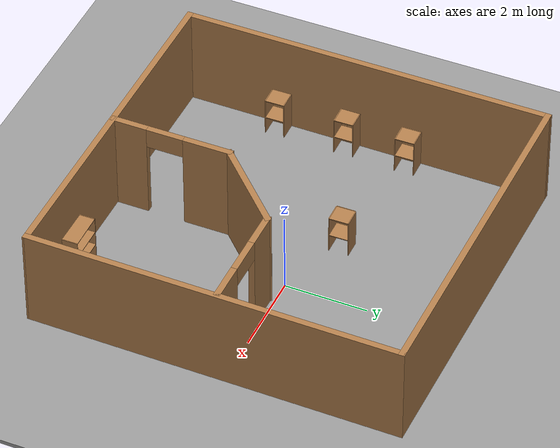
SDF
<sdf version="1.6">
 <world name="default">
  <plugin name="hello" filename="libhello.so"/>
  <light name="sun" type="directional">
   <pose>0 0 10 0 -0 0</pose>
   <diffuse>0.8 0.8 0.8 1</diffuse>
   <specular>0.2 0.2 0.2 1</specular>
   <attenuation>
    <range>1000</range>
    <constant>0.9</constant>
    <linear>0.01</linear>
    <quadratic>0.001</quadratic>
   </attenuation>
   <direction>-0.5 0.1 -0.9</direction>
  </light>
  <model name="ground_plane">
   <static>1</static>
   <link name="link">
    <collision name="collision">
     <geometry><plane><normal>0 0 1</normal><size>100 100</size></plane></geometry>
     <surface>
      <contact><collide_bitmask>65535</collide_bitmask></contact>
      <friction><ode><mu>100</mu><mu2>50</mu2></ode></friction>
     </surface>
    </collision>
    <visual name="visual">
     <cast_shadows>0</cast_shadows>
     <geometry><plane><normal>0 0 1</normal><size>100 100</size></plane></geometry>
     <material>
      <script><uri>file://media/materials/scripts/gazebo.material</uri><name>Gazebo/Grey</name></script>
     </material>
    </visual>
   </link>
  </model>
  <gravity>0 0 -9.8</gravity>
  <magnetic_field>6e-06 2.3e-05 -4.2e-05</magnetic_field>
  <atmosphere type="adiabatic"/>
  <physics name="default_physics" default="0" type="ode">
   <max_step_size>0.001</max_step_size>
   <real_time_factor>1</real_time_factor>
   <real_time_update_rate>1000</real_time_update_rate>
  </physics>
  <scene><ambient>0.4 0.4 0.4 1</ambient><background>0.7 0.7 0.7 1</background><shadows>1</shadows></scene>
  <audio><device>default</device></audio>
  <spherical_coordinates>
   <surface_model>EARTH_WGS84</surface_model>
   <latitude_deg>0</latitude_deg>
   <longitude_deg>0</longitude_deg>
   <elevation>0</elevation>
   <heading_deg>0</heading_deg>
  </spherical_coordinates>
  <plugin name="collision_map_creator" filename="libcollision_map_creator.so"/>
  <model name="bookshelf_clone">
   <static>1</static>
   <link name="link">
    <inertial><mass>1</mass></inertial>
    <collision name="back">
     <pose>0 0.005 0.6 0 -0 0</pose>
     <geometry><box><size>0.9 0.01 1.2</size></box></geometry>
    </collision>
    <visual name="visual1">
     <pose>0 0.005 0.6 0 -0 0</pose>
     <geometry><box><size>0.9 0.01 1.2</size></box></geometry>
     <material>
      <script><uri>file://media/materials/scripts/gazebo.material</uri><name>Gazebo/Wood</name></script>
     </material>
    </visual>
    <collision name="left_side">
     <pose>0.45 -0.195 0.6 0 -0 0</pose>
     <geometry><box><size>0.02 0.4 1.2</size></box></geometry>
    </collision>
    <visual name="visual2">
     <pose>0.45 -0.195 0.6 0 -0 0</pose>
     <geometry><box><size>0.02 0.4 1.2</size></box></geometry>
     <material>
      <script><uri>file://media/materials/scripts/gazebo.material</uri><name>Gazebo/Wood</name></script>
     </material>
    </visual>
    <collision name="right_side">
     <pose>-0.45 -0.195 0.6 0 -0 0</pose>
     <geometry><box><size>0.02 0.4 1.2</size></box></geometry>
    </collision>
    <visual name="visual3">
     <pose>-0.45 -0.195 0.6 0 -0 0</pose>
     <geometry><box><size>0.02 0.4 1.2</size></box></geometry>
     <material>
      <script><uri>file://media/materials/scripts/gazebo.material</uri><name>Gazebo/Wood</name></script>
     </material>
    </visual>
    <collision name="bottom">
     <pose>0 -0.195 0.03 0 -0 0</pose>
     <geometry><box><size>0.88 0.4 0.06</size></box></geometry>
    </collision>
    <visual name="visual4">
     <pose>0 -0.195 0.03 0 -0 0</pose>
     <geometry><box><size>0.88 0.4 0.06</size></box></geometry>
     <material>
      <script><uri>file://media/materials/scripts/gazebo.material</uri><name>Gazebo/Wood</name></script>
     </material>
    </visual>
    <collision name="top">
     <pose>0 -0.195 1.19 0 -0 0</pose>
     <geometry><box><size>0.88 0.4 0.02</size></box></geometry>
    </collision>
    <visual name="visual5">
     <pose>0 -0.195 1.19 0 -0 0</pose>
     <geometry><box><size>0.88 0.4 0.02</size></box></geometry>
     <material>
      <script><uri>file://media/materials/scripts/gazebo.material</uri><name>Gazebo/Wood</name></script>
     </material>
    </visual>
    <collision name="low_shelf">
     <pose>0 -0.195 0.43 0 -0 0</pose>
     <geometry><box><size>0.88 0.4 0.02</size></box></geometry>
    </collision>
    <visual name="visual6">
     <pose>0 -0.195 0.43 0 -0 0</pose>
     <geometry><box><size>0.88 0.4 0.02</size></box></geometry>
     <material>
      <script><uri>file://media/materials/scripts/gazebo.material</uri><name>Gazebo/Wood</name></script>
     </material>
    </visual>
    <collision name="high_shelf">
     <pose>0 -0.195 0.8 0 -0 0</pose>
     <geometry><box><size>0.88 0.4 0.02</size></box></geometry>
    </collision>
    <visual name="visual7">
     <pose>0 -0.195 0.8 0 -0 0</pose>
     <geometry><box><size>0.88 0.4 0.02</size></box></geometry>
     <material>
      <script><uri>file://media/materials/scripts/gazebo.material</uri><name>Gazebo/Wood</name></script>
     </material>
    </visual>
   </link>
   <pose>3.15092 -2.64147 0 0 0 -1.60802</pose>
  </model>
  <model name="ball_bearing">
   <link name="link">
    <pose>0 0 0.003 0 -0 0</pose>
    <inertial>
     <mass>0.0011</mass>
     <inertia>
      <ixx>3.96e-09</ixx>
      <ixy>0</ixy>
      <ixz>0</ixz>
      <iyy>3.96e-09</iyy>
      <iyz>0</iyz>
      <izz>3.96e-09</izz>
     </inertia>
    </inertial>
    <collision name="collision">
     <geometry><sphere><radius>0.003</radius></sphere></geometry>
     <surface>
      <contact>
       <poissons_ratio>0.305</poissons_ratio>
       <elastic_modulus>2e+11</elastic_modulus>
       <ode><kp>100000</kp><kd>100</kd><max_vel>100</max_vel><min_depth>0.001</min_depth></ode>
      </contact>
      <friction>
       <torsional>
        <coefficient>1</coefficient>
        <use_patch_radius>0</use_patch_radius>
        <surface_radius>0.01</surface_radius>
       </torsional>
      </friction>
     </surface>
    </collision>
    <visual name="visual">
     <geometry><sphere><radius>0.003</radius></sphere></geometry>
     <material>
      <script><uri>file://media/materials/scripts/gazebo.material</uri><name>Gazebo/Grey</name></script>
     </material>
    </visual>
    <velocity_decay><linear>0</linear><angular>0.005</angular></velocity_decay>
   </link>
   <pose>-4.51921 -1.96699 -0.000722 0 -0 0</pose>
  </model>
  <model name="cabinet">
   <static>1</static>
   <link name="cabinet_bottom_plate">
    <inertial>
     <pose>0 0 -1 0 -0 0</pose>
     <inertia><ixx>2.05</ixx><ixy>0</ixy><ixz>0</ixz><iyy>2.05</iyy><iyz>0</iyz><izz>2.05</izz></inertia>
     <mass>25</mass>
    </inertial>
    <collision name="cabinet_bottom_plate_geom">
     <pose>0 0 0.01 0 -0 0</pose>
     <geometry><box><size>0.45 0.45 0.02</size></box></geometry>
    </collision>
    <visual name="cabinet_bottom_plate_geom_visual">
     <pose>0 0 0.01 0 -0 0</pose>
     <geometry><box><size>0.45 0.45 0.02</size></box></geometry>
     <material>
      <script><uri>file://media/materials/scripts/gazebo.material</uri><name>Gazebo/Wood</name></script>
     </material>
    </visual>
    <collision name="cabinet_bottom_plate_geom_cabinet_back_plate">
     <pose>0.235 0 0.51 0 -0 0</pose>
     <geometry><box><size>0.02 0.45 1.02</size></box></geometry>
    </collision>
    <visual name="cabinet_bottom_plate_geom_cabinet_back_plate_visual">
     <pose>0.235 0 0.51 0 -0 0</pose>
     <geometry><box><size>0.02 0.45 1.02</size></box></geometry>
     <material>
      <script><uri>file://media/materials/scripts/gazebo.material</uri><name>Gazebo/Wood</name></script>
     </material>
    </visual>
    <collision name="cabinet_bottom_plate_geom_cabinet_left_plate">
     <pose>0 0.235 0.51 0 -0 0</pose>
     <geometry><box><size>0.45 0.02 1.02</size></box></geometry>
    </collision>
    <visual name="cabinet_bottom_plate_geom_cabinet_left_plate_visual">
     <pose>0 0.235 0.51 0 -0 0</pose>
     <geometry><box><size>0.45 0.02 1.02</size></box></geometry>
     <material>
      <script><uri>file://media/materials/scripts/gazebo.material</uri><name>Gazebo/Wood</name></script>
     </material>
    </visual>
    <collision name="cabinet_bottom_plate_geom_cabinet_middle_plate">
     <pose>0 0 0.51 0 -0 0</pose>
     <geometry><box><size>0.45 0.45 0.02</size></box></geometry>
    </collision>
    <visual name="cabinet_bottom_plate_geom_cabinet_middle_plate_visual">
     <pose>0 0 0.51 0 -0 0</pose>
     <geometry><box><size>0.45 0.45 0.02</size></box></geometry>
     <material>
      <script><uri>file://media/materials/scripts/gazebo.material</uri><name>Gazebo/Wood</name></script>
     </material>
    </visual>
    <collision name="cabinet_bottom_plate_geom_cabinet_right_plate">
     <pose>0 -0.235 0.51 0 -0 0</pose>
     <geometry><box><size>0.45 0.02 1.02</size></box></geometry>
    </collision>
    <visual name="cabinet_bottom_plate_geom_cabinet_right_plate_visual">
     <pose>0 -0.235 0.51 0 -0 0</pose>
     <geometry><box><size>0.45 0.02 1.02</size></box></geometry>
     <material>
      <script><uri>file://media/materials/scripts/gazebo.material</uri><name>Gazebo/Wood</name></script>
     </material>
    </visual>
    <collision name="cabinet_bottom_plate_geom_cabinet_top_plate">
     <pose>0 0 1.01 0 -0 0</pose>
     <geometry><box><size>0.45 0.45 0.02</size></box></geometry>
    </collision>
    <visual name="cabinet_bottom_plate_geom_cabinet_top_plate_visual">
     <pose>0 0 1.01 0 -0 0</pose>
     <geometry><box><size>0.45 0.45 0.02</size></box></geometry>
     <material>
      <script><uri>file://media/materials/scripts/gazebo.material</uri><name>Gazebo/Wood</name></script>
     </material>
    </visual>
   </link>
   <pose>-4.78968 -2.28051 0 0 0 -3.12665</pose>
  </model>
  <plugin name="collision_map_creator" filename="libcollision_map_creator.so"/>
  <model name="ground_plane_0">
   <static>1</static>
   <link name="link">
    <collision name="collision">
     <geometry><plane><normal>0 0 1</normal><size>100 100</size></plane></geometry>
     <surface><friction><ode><mu>100</mu><mu2>50</mu2></ode></friction></surface>
    </collision>
    <visual name="visual">
     <cast_shadows>0</cast_shadows>
     <geometry><plane><normal>0 0 1</normal><size>100 100</size></plane></geometry>
     <material>
      <script><uri>file://media/materials/scripts/gazebo.material</uri><name>Gazebo/Grey</name></script>
     </material>
    </visual>
   </link>
   <pose>-2.11934 0.880947 0 0 -0 0</pose>
  </model>
  <model name="floor">
   <link name="Floor">
    <pose>0.3 0 0.01 0 -0 0</pose>
    <visual name="Floor">
     <transparency>0.2</transparency>
     <geometry><plane><normal>0 0 1</normal><size>8.5 9</size></plane></geometry>
     <material>
      <script><uri>file://media/materials/scripts/gazebo.material</uri><name>Gazebo/WoodFloor</name></script>
     </material>
    </visual>
    <velocity_decay><linear>0</linear><angular>0</angular></velocity_decay>
   </link>
   <static>1</static>
   <pose>-1.183 -0.175545 0 0 -0 0</pose>
  </model>
  <model name="cabinet_clone">
   <static>1</static>
   <link name="cabinet_bottom_plate">
    <inertial>
     <pose>0 0 -1 0 -0 0</pose>
     <inertia><ixx>2.05</ixx><ixy>0</ixy><ixz>0</ixz><iyy>2.05</iyy><iyz>0</iyz><izz>2.05</izz></inertia>
     <mass>25</mass>
    </inertial>
    <collision name="cabinet_bottom_plate_geom">
     <pose>0 0 0.01 0 -0 0</pose>
     <geometry><box><size>0.45 0.45 0.02</size></box></geometry>
    </collision>
    <visual name="cabinet_bottom_plate_geom_visual">
     <pose>0 0 0.01 0 -0 0</pose>
     <geometry><box><size>0.45 0.45 0.02</size></box></geometry>
     <material>
      <script><uri>file://media/materials/scripts/gazebo.material</uri><name>Gazebo/Wood</name></script>
     </material>
    </visual>
    <collision name="cabinet_bottom_plate_geom_cabinet_back_plate">
     <pose>0.235 0 0.51 0 -0 0</pose>
     <geometry><box><size>0.02 0.45 1.02</size></box></geometry>
    </collision>
    <visual name="cabinet_bottom_plate_geom_cabinet_back_plate_visual">
     <pose>0.235 0 0.51 0 -0 0</pose>
     <geometry><box><size>0.02 0.45 1.02</size></box></geometry>
     <material>
      <script><uri>file://media/materials/scripts/gazebo.material</uri><name>Gazebo/Wood</name></script>
     </material>
    </visual>
    <collision name="cabinet_bottom_plate_geom_cabinet_left_plate">
     <pose>0 0.235 0.51 0 -0 0</pose>
     <geometry><box><size>0.45 0.02 1.02</size></box></geometry>
    </collision>
    <visual name="cabinet_bottom_plate_geom_cabinet_left_plate_visual">
     <pose>0 0.235 0.51 0 -0 0</pose>
     <geometry><box><size>0.45 0.02 1.02</size></box></geometry>
     <material>
      <script><uri>file://media/materials/scripts/gazebo.material</uri><name>Gazebo/Wood</name></script>
     </material>
    </visual>
    <collision name="cabinet_bottom_plate_geom_cabinet_middle_plate">
     <pose>0 0 0.51 0 -0 0</pose>
     <geometry><box><size>0.45 0.45 0.02</size></box></geometry>
    </collision>
    <visual name="cabinet_bottom_plate_geom_cabinet_middle_plate_visual">
     <pose>0 0 0.51 0 -0 0</pose>
     <geometry><box><size>0.45 0.45 0.02</size></box></geometry>
     <material>
      <script><uri>file://media/materials/scripts/gazebo.material</uri><name>Gazebo/Wood</name></script>
     </material>
    </visual>
    <collision name="cabinet_bottom_plate_geom_cabinet_right_plate">
     <pose>0 -0.235 0.51 0 -0 0</pose>
     <geometry><box><size>0.45 0.02 1.02</size></box></geometry>
    </collision>
    <visual name="cabinet_bottom_plate_geom_cabinet_right_plate_visual">
     <pose>0 -0.235 0.51 0 -0 0</pose>
     <geometry><box><size>0.45 0.02 1.02</size></box></geometry>
     <material>
      <script><uri>file://media/materials/scripts/gazebo.material</uri><name>Gazebo/Wood</name></script>
     </material>
    </visual>
    <collision name="cabinet_bottom_plate_geom_cabinet_top_plate">
     <pose>0 0 1.01 0 -0 0</pose>
     <geometry><box><size>0.45 0.45 0.02</size></box></geometry>
    </collision>
    <visual name="cabinet_bottom_plate_geom_cabinet_top_plate_visual">
     <pose>0 0 1.01 0 -0 0</pose>
     <geometry><box><size>0.45 0.45 0.02</size></box></geometry>
     <material>
      <script><uri>file://media/materials/scripts/gazebo.material</uri><name>Gazebo/Wood</name></script>
     </material>
    </visual>
   </link>
   <pose>-1.65523 0.686203 0 0 0 -3.12665</pose>
  </model>
  <model name="bookshelf_clone_clone">
   <static>1</static>
   <link name="link">
    <inertial><mass>1</mass></inertial>
    <collision name="back">
     <pose>0 0.005 0.6 0 -0 0</pose>
     <geometry><box><size>0.9 0.01 1.2</size></box></geometry>
    </collision>
    <visual name="visual1">
     <pose>0 0.005 0.6 0 -0 0</pose>
     <geometry><box><size>0.9 0.01 1.2</size></box></geometry>
     <material>
      <script><uri>file://media/materials/scripts/gazebo.material</uri><name>Gazebo/Wood</name></script>
     </material>
    </visual>
    <collision name="left_side">
     <pose>0.45 -0.195 0.6 0 -0 0</pose>
     <geometry><box><size>0.02 0.4 1.2</size></box></geometry>
    </collision>
    <visual name="visual2">
     <pose>0.45 -0.195 0.6 0 -0 0</pose>
     <geometry><box><size>0.02 0.4 1.2</size></box></geometry>
     <material>
      <script><uri>file://media/materials/scripts/gazebo.material</uri><name>Gazebo/Wood</name></script>
     </material>
    </visual>
    <collision name="right_side">
     <pose>-0.45 -0.195 0.6 0 -0 0</pose>
     <geometry><box><size>0.02 0.4 1.2</size></box></geometry>
    </collision>
    <visual name="visual3">
     <pose>-0.45 -0.195 0.6 0 -0 0</pose>
     <geometry><box><size>0.02 0.4 1.2</size></box></geometry>
     <material>
      <script><uri>file://media/materials/scripts/gazebo.material</uri><name>Gazebo/Wood</name></script>
     </material>
    </visual>
    <collision name="bottom">
     <pose>0 -0.195 0.03 0 -0 0</pose>
     <geometry><box><size>0.88 0.4 0.06</size></box></geometry>
    </collision>
    <visual name="visual4">
     <pose>0 -0.195 0.03 0 -0 0</pose>
     <geometry><box><size>0.88 0.4 0.06</size></box></geometry>
     <material>
      <script><uri>file://media/materials/scripts/gazebo.material</uri><name>Gazebo/Wood</name></script>
     </material>
    </visual>
    <collision name="top">
     <pose>0 -0.195 1.19 0 -0 0</pose>
     <geometry><box><size>0.88 0.4 0.02</size></box></geometry>
    </collision>
    <visual name="visual5">
     <pose>0 -0.195 1.19 0 -0 0</pose>
     <geometry><box><size>0.88 0.4 0.02</size></box></geometry>
     <material>
      <script><uri>file://media/materials/scripts/gazebo.material</uri><name>Gazebo/Wood</name></script>
     </material>
    </visual>
    <collision name="low_shelf">
     <pose>0 -0.195 0.43 0 -0 0</pose>
     <geometry><box><size>0.88 0.4 0.02</size></box></geometry>
    </collision>
    <visual name="visual6">
     <pose>0 -0.195 0.43 0 -0 0</pose>
     <geometry><box><size>0.88 0.4 0.02</size></box></geometry>
     <material>
      <script><uri>file://media/materials/scripts/gazebo.material</uri><name>Gazebo/Wood</name></script>
     </material>
    </visual>
    <collision name="high_shelf">
     <pose>0 -0.195 0.8 0 -0 0</pose>
     <geometry><box><size>0.88 0.4 0.02</size></box></geometry>
    </collision>
    <visual name="visual7">
     <pose>0 -0.195 0.8 0 -0 0</pose>
     <geometry><box><size>0.88 0.4 0.02</size></box></geometry>
     <material>
      <script><uri>file://media/materials/scripts/gazebo.material</uri><name>Gazebo/Wood</name></script>
     </material>
    </visual>
   </link>
   <pose>-1.77488 3.7824 0 0 -0 3.12725</pose>
  </model>
  <plugin name="collision_map_creator" filename="libcollision_map_creator.so"/>
  <model name="house4">
   <pose>-0.904352 -0.23296 0 0 -0 0</pose>
   <link name="Wall_0">
    <collision name="Wall_0_Collision">
     <geometry><box><size>8.52798 0.15 2.5</size></box></geometry>
     <pose>0 0 1.25 0 -0 0</pose>
    </collision>
    <visual name="Wall_0_Visual">
     <pose>0 0 1.25 0 -0 0</pose>
     <geometry><box><size>8.52798 0.15 2.5</size></box></geometry>
     <material>
      <script><uri>file://media/materials/scripts/gazebo.material</uri><name>Gazebo/Wood</name></script>
      <ambient>1 1 1 1</ambient>
     </material>
     <meta><layer>0</layer></meta>
    </visual>
    <pose>0.017352 4.44096 0 0 0 -0.008355</pose>
   </link>
   <link name="Wall_10">
    <pose>2.80335 0.08196 0 0 -0 3.14159</pose>
    <visual name="Wall_10_Visual_0">
     <pose>-0.911693 0 1.25 0 -0 0</pose>
     <geometry><box><size>0.926614 0.15 2.5</size></box></geometry>
     <material>
      <script><uri>file://media/materials/scripts/gazebo.material</uri><name>Gazebo/Wood</name></script>
      <ambient>1 1 1 1</ambient>
     </material>
     <meta><layer>0</layer></meta>
    </visual>
    <collision name="Wall_10_Collision_0">
     <geometry><box><size>0.926614 0.15 2.5</size></box></geometry>
     <pose>-0.911693 0 1.25 0 -0 0</pose>
    </collision>
    <visual name="Wall_10_Visual_1">
     <pose>0.913307 0 1.25 0 -0 0</pose>
     <geometry><box><size>0.923386 0.15 2.5</size></box></geometry>
     <material>
      <script><uri>file://media/materials/scripts/gazebo.material</uri><name>Gazebo/Wood</name></script>
      <ambient>1 1 1 1</ambient>
     </material>
     <meta><layer>0</layer></meta>
    </visual>
    <collision name="Wall_10_Collision_1">
     <geometry><box><size>0.923386 0.15 2.5</size></box></geometry>
     <pose>0.913307 0 1.25 0 -0 0</pose>
    </collision>
    <visual name="Wall_10_Visual_2">
     <pose>0.001614 0 2.25 0 -0 0</pose>
     <geometry><box><size>0.9 0.15 0.5</size></box></geometry>
     <material>
      <script><uri>file://media/materials/scripts/gazebo.material</uri><name>Gazebo/Wood</name></script>
      <ambient>1 1 1 1</ambient>
     </material>
     <meta><layer>0</layer></meta>
    </visual>
    <collision name="Wall_10_Collision_2">
     <geometry><box><size>0.9 0.15 0.5</size></box></geometry>
     <pose>0.001614 0 2.25 0 -0 0</pose>
    </collision>
   </link>
   <link name="Wall_11">
    <collision name="Wall_11_Collision">
     <geometry><box><size>2.5 0.15 2.5</size></box></geometry>
     <pose>0 0 1.25 0 -0 0</pose>
    </collision>
    <visual name="Wall_11_Visual">
     <pose>0 0 1.25 0 -0 0</pose>
     <geometry><box><size>2.5 0.15 2.5</size></box></geometry>
     <material>
      <script><uri>file://media/materials/scripts/gazebo.material</uri><name>Gazebo/Wood</name></script>
      <ambient>1 1 1 1</ambient>
     </material>
     <meta><layer>0</layer></meta>
    </visual>
    <pose>0.672352 -0.74904 0 0 0 -2.35619</pose>
   </link>
   <link name="Wall_12">
    <pose>-0.158648 -3.00504 0 0 0 -1.5708</pose>
    <visual name="Wall_12_Visual_0">
     <pose>-0.900127 0 1.25 0 -0 0</pose>
     <geometry><box><size>1.19975 0.15 2.5</size></box></geometry>
     <material>
      <script><uri>file://media/materials/scripts/gazebo.material</uri><name>Gazebo/Wood</name></script>
      <ambient>1 1 1 1</ambient>
     </material>
     <meta><layer>0</layer></meta>
    </visual>
    <collision name="Wall_12_Collision_0">
     <geometry><box><size>1.19975 0.15 2.5</size></box></geometry>
     <pose>-0.900127 0 1.25 0 -0 0</pose>
    </collision>
    <visual name="Wall_12_Visual_1">
     <pose>1.04987 0 1.25 0 -0 0</pose>
     <geometry><box><size>0.900255 0.15 2.5</size></box></geometry>
     <material>
      <script><uri>file://media/materials/scripts/gazebo.material</uri><name>Gazebo/Wood</name></script>
      <ambient>1 1 1 1</ambient>
     </material>
     <meta><layer>0</layer></meta>
    </visual>
    <collision name="Wall_12_Collision_1">
     <geometry><box><size>0.900255 0.15 2.5</size></box></geometry>
     <pose>1.04987 0 1.25 0 -0 0</pose>
    </collision>
    <visual name="Wall_12_Visual_2">
     <pose>0.149745 0 2.25 0 -0 0</pose>
     <geometry><box><size>0.9 0.15 0.5</size></box></geometry>
     <material>
      <script><uri>file://media/materials/scripts/gazebo.material</uri><name>Gazebo/Wood</name></script>
      <ambient>1 1 1 1</ambient>
     </material>
     <meta><layer>0</layer></meta>
    </visual>
    <collision name="Wall_12_Collision_2">
     <geometry><box><size>0.9 0.15 0.5</size></box></geometry>
     <pose>0.149745 0 2.25 0 -0 0</pose>
    </collision>
   </link>
   <link name="Wall_2">
    <collision name="Wall_2_Collision">
     <geometry><box><size>9.03219 0.15 2.5</size></box></geometry>
     <pose>0 0 1.25 0 -0 0</pose>
    </collision>
    <visual name="Wall_2_Visual">
     <pose>0 0 1.25 0 -0 0</pose>
     <geometry><box><size>9.03219 0.15 2.5</size></box></geometry>
     <material>
      <script><uri>file://media/materials/scripts/gazebo.material</uri><name>Gazebo/Wood</name></script>
      <ambient>1 1 1 1</ambient>
     </material>
     <meta><layer>0</layer></meta>
    </visual>
    <pose>4.17135 -0.03504 0 0 0 -1.57868</pose>
   </link>
   <link name="Wall_3">
    <collision name="Wall_3_Collision">
     <geometry><box><size>8.49281 0.15 2.5</size></box></geometry>
     <pose>0 0 1.25 0 -0 0</pose>
    </collision>
    <visual name="Wall_3_Visual">
     <pose>0 0 1.25 0 -0 0</pose>
     <geometry><box><size>8.49281 0.15 2.5</size></box></geometry>
     <material>
      <script><uri>file://media/materials/scripts/gazebo.material</uri><name>Gazebo/Wood</name></script>
      <ambient>1 1 1 1</ambient>
     </material>
     <meta><layer>0</layer></meta>
    </visual>
    <pose>-0.035148 -4.45854 0 0 -0 3.1374</pose>
   </link>
   <link name="Wall_4">
    <collision name="Wall_4_Collision">
     <geometry><box><size>9.06707 0.15 2.5</size></box></geometry>
     <pose>0 0 1.25 0 -0 0</pose>
    </collision>
    <visual name="Wall_4_Visual">
     <pose>0 0 1.25 0 -0 0</pose>
     <geometry><box><size>9.06707 0.15 2.5</size></box></geometry>
     <material>
      <script><uri>file://media/materials/scripts/gazebo.material</uri><name>Gazebo/Wood</name></script>
      <ambient>1 1 1 1</ambient>
     </material>
     <meta><layer>0</layer></meta>
    </visual>
    <pose>-4.18915 0.01746 0 0 -0 1.56687</pose>
   </link>
   <static>1</static>
  </model>
  <model name="cabinet_clone_0">
   <static>1</static>
   <link name="cabinet_bottom_plate">
    <inertial>
     <pose>0 0 -1 0 -0 0</pose>
     <inertia><ixx>2.05</ixx><ixy>0</ixy><ixz>0</ixz><iyy>2.05</iyy><iyz>0</iyz><izz>2.05</izz></inertia>
     <mass>25</mass>
    </inertial>
    <collision name="cabinet_bottom_plate_geom">
     <pose>0 0 0.01 0 -0 0</pose>
     <geometry><box><size>0.45 0.45 0.02</size></box></geometry>
    </collision>
    <visual name="cabinet_bottom_plate_geom_visual">
     <pose>0 0 0.01 0 -0 0</pose>
     <geometry><box><size>0.45 0.45 0.02</size></box></geometry>
     <material>
      <script><uri>file://media/materials/scripts/gazebo.material</uri><name>Gazebo/Wood</name></script>
     </material>
    </visual>
    <collision name="cabinet_bottom_plate_geom_cabinet_back_plate">
     <pose>0.235 0 0.51 0 -0 0</pose>
     <geometry><box><size>0.02 0.45 1.02</size></box></geometry>
    </collision>
    <visual name="cabinet_bottom_plate_geom_cabinet_back_plate_visual">
     <pose>0.235 0 0.51 0 -0 0</pose>
     <geometry><box><size>0.02 0.45 1.02</size></box></geometry>
     <material>
      <script><uri>file://media/materials/scripts/gazebo.material</uri><name>Gazebo/Wood</name></script>
     </material>
    </visual>
    <collision name="cabinet_bottom_plate_geom_cabinet_left_plate">
     <pose>0 0.235 0.51 0 -0 0</pose>
     <geometry><box><size>0.45 0.02 1.02</size></box></geometry>
    </collision>
    <visual name="cabinet_bottom_plate_geom_cabinet_left_plate_visual">
     <pose>0 0.235 0.51 0 -0 0</pose>
     <geometry><box><size>0.45 0.02 1.02</size></box></geometry>
     <material>
      <script><uri>file://media/materials/scripts/gazebo.material</uri><name>Gazebo/Wood</name></script>
     </material>
    </visual>
    <collision name="cabinet_bottom_plate_geom_cabinet_middle_plate">
     <pose>0 0 0.51 0 -0 0</pose>
     <geometry><box><size>0.45 0.45 0.02</size></box></geometry>
    </collision>
    <visual name="cabinet_bottom_plate_geom_cabinet_middle_plate_visual">
     <pose>0 0 0.51 0 -0 0</pose>
     <geometry><box><size>0.45 0.45 0.02</size></box></geometry>
     <material>
      <script><uri>file://media/materials/scripts/gazebo.material</uri><name>Gazebo/Wood</name></script>
     </material>
    </visual>
    <collision name="cabinet_bottom_plate_geom_cabinet_right_plate">
     <pose>0 -0.235 0.51 0 -0 0</pose>
     <geometry><box><size>0.45 0.02 1.02</size></box></geometry>
    </collision>
    <visual name="cabinet_bottom_plate_geom_cabinet_right_plate_visual">
     <pose>0 -0.235 0.51 0 -0 0</pose>
     <geometry><box><size>0.45 0.02 1.02</size></box></geometry>
     <material>
      <script><uri>file://media/materials/scripts/gazebo.material</uri><name>Gazebo/Wood</name></script>
     </material>
    </visual>
    <collision name="cabinet_bottom_plate_geom_cabinet_top_plate">
     <pose>0 0 1.01 0 -0 0</pose>
     <geometry><box><size>0.45 0.45 0.02</size></box></geometry>
    </collision>
    <visual name="cabinet_bottom_plate_geom_cabinet_top_plate_visual">
     <pose>0 0 1.01 0 -0 0</pose>
     <geometry><box><size>0.45 0.45 0.02</size></box></geometry>
     <material>
      <script><uri>file://media/materials/scripts/gazebo.material</uri><name>Gazebo/Wood</name></script>
     </material>
    </visual>
   </link>
   <pose>-4.79639 -0.541504 0 0 0 -3.12665</pose>
  </model>
  <model name="cabinet_clone_0_clone">
   <static>1</static>
   <link name="cabinet_bottom_plate">
    <inertial>
     <pose>0 0 -1 0 -0 0</pose>
     <inertia><ixx>2.05</ixx><ixy>0</ixy><ixz>0</ixz><iyy>2.05</iyy><iyz>0</iyz><izz>2.05</izz></inertia>
     <mass>25</mass>
    </inertial>
    <collision name="cabinet_bottom_plate_geom">
     <pose>0 0 0.01 0 -0 0</pose>
     <geometry><box><size>0.45 0.45 0.02</size></box></geometry>
    </collision>
    <visual name="cabinet_bottom_plate_geom_visual">
     <pose>0 0 0.01 0 -0 0</pose>
     <geometry><box><size>0.45 0.45 0.02</size></box></geometry>
     <material>
      <script><uri>file://media/materials/scripts/gazebo.material</uri><name>Gazebo/Wood</name></script>
     </material>
    </visual>
    <collision name="cabinet_bottom_plate_geom_cabinet_back_plate">
     <pose>0.235 0 0.51 0 -0 0</pose>
     <geometry><box><size>0.02 0.45 1.02</size></box></geometry>
    </collision>
    <visual name="cabinet_bottom_plate_geom_cabinet_back_plate_visual">
     <pose>0.235 0 0.51 0 -0 0</pose>
     <geometry><box><size>0.02 0.45 1.02</size></box></geometry>
     <material>
      <script><uri>file://media/materials/scripts/gazebo.material</uri><name>Gazebo/Wood</name></script>
     </material>
    </visual>
    <collision name="cabinet_bottom_plate_geom_cabinet_left_plate">
     <pose>0 0.235 0.51 0 -0 0</pose>
     <geometry><box><size>0.45 0.02 1.02</size></box></geometry>
    </collision>
    <visual name="cabinet_bottom_plate_geom_cabinet_left_plate_visual">
     <pose>0 0.235 0.51 0 -0 0</pose>
     <geometry><box><size>0.45 0.02 1.02</size></box></geometry>
     <material>
      <script><uri>file://media/materials/scripts/gazebo.material</uri><name>Gazebo/Wood</name></script>
     </material>
    </visual>
    <collision name="cabinet_bottom_plate_geom_cabinet_middle_plate">
     <pose>0 0 0.51 0 -0 0</pose>
     <geometry><box><size>0.45 0.45 0.02</size></box></geometry>
    </collision>
    <visual name="cabinet_bottom_plate_geom_cabinet_middle_plate_visual">
     <pose>0 0 0.51 0 -0 0</pose>
     <geometry><box><size>0.45 0.45 0.02</size></box></geometry>
     <material>
      <script><uri>file://media/materials/scripts/gazebo.material</uri><name>Gazebo/Wood</name></script>
     </material>
    </visual>
    <collision name="cabinet_bottom_plate_geom_cabinet_right_plate">
     <pose>0 -0.235 0.51 0 -0 0</pose>
     <geometry><box><size>0.45 0.02 1.02</size></box></geometry>
    </collision>
    <visual name="cabinet_bottom_plate_geom_cabinet_right_plate_visual">
     <pose>0 -0.235 0.51 0 -0 0</pose>
     <geometry><box><size>0.45 0.02 1.02</size></box></geometry>
     <material>
      <script><uri>file://media/materials/scripts/gazebo.material</uri><name>Gazebo/Wood</name></script>
     </material>
    </visual>
    <collision name="cabinet_bottom_plate_geom_cabinet_top_plate">
     <pose>0 0 1.01 0 -0 0</pose>
     <geometry><box><size>0.45 0.45 0.02</size></box></geometry>
    </collision>
    <visual name="cabinet_bottom_plate_geom_cabinet_top_plate_visual">
     <pose>0 0 1.01 0 -0 0</pose>
     <geometry><box><size>0.45 0.45 0.02</size></box></geometry>
     <material>
      <script><uri>file://media/materials/scripts/gazebo.material</uri><name>Gazebo/Wood</name></script>
     </material>
    </visual>
   </link>
   <pose>-4.76483 0.998271 0 0 0 -3.12665</pose>
  </model>
  <model name="bookshelf_clone_clone_0">
   <static>1</static>
   <link name="link">
    <inertial><mass>1</mass></inertial>
    <collision name="back">
     <pose>0 0.005 0.6 0 -0 0</pose>
     <geometry><box><size>0.9 0.01 1.2</size></box></geometry>
    </collision>
    <visual name="visual1">
     <pose>0 0.005 0.6 0 -0 0</pose>
     <geometry><box><size>0.9 0.01 1.2</size></box></geometry>
     <material>
      <script><uri>file://media/materials/scripts/gazebo.material</uri><name>Gazebo/Wood</name></script>
     </material>
    </visual>
    <collision name="left_side">
     <pose>0.45 -0.195 0.6 0 -0 0</pose>
     <geometry><box><size>0.02 0.4 1.2</size></box></geometry>
    </collision>
    <visual name="visual2">
     <pose>0.45 -0.195 0.6 0 -0 0</pose>
     <geometry><box><size>0.02 0.4 1.2</size></box></geometry>
     <material>
      <script><uri>file://media/materials/scripts/gazebo.material</uri><name>Gazebo/Wood</name></script>
     </material>
    </visual>
    <collision name="right_side">
     <pose>-0.45 -0.195 0.6 0 -0 0</pose>
     <geometry><box><size>0.02 0.4 1.2</size></box></geometry>
    </collision>
    <visual name="visual3">
     <pose>-0.45 -0.195 0.6 0 -0 0</pose>
     <geometry><box><size>0.02 0.4 1.2</size></box></geometry>
     <material>
      <script><uri>file://media/materials/scripts/gazebo.material</uri><name>Gazebo/Wood</name></script>
     </material>
    </visual>
    <collision name="bottom">
     <pose>0 -0.195 0.03 0 -0 0</pose>
     <geometry><box><size>0.88 0.4 0.06</size></box></geometry>
    </collision>
    <visual name="visual4">
     <pose>0 -0.195 0.03 0 -0 0</pose>
     <geometry><box><size>0.88 0.4 0.06</size></box></geometry>
     <material>
      <script><uri>file://media/materials/scripts/gazebo.material</uri><name>Gazebo/Wood</name></script>
     </material>
    </visual>
    <collision name="top">
     <pose>0 -0.195 1.19 0 -0 0</pose>
     <geometry><box><size>0.88 0.4 0.02</size></box></geometry>
    </collision>
    <visual name="visual5">
     <pose>0 -0.195 1.19 0 -0 0</pose>
     <geometry><box><size>0.88 0.4 0.02</size></box></geometry>
     <material>
      <script><uri>file://media/materials/scripts/gazebo.material</uri><name>Gazebo/Wood</name></script>
     </material>
    </visual>
    <collision name="low_shelf">
     <pose>0 -0.195 0.43 0 -0 0</pose>
     <geometry><box><size>0.88 0.4 0.02</size></box></geometry>
    </collision>
    <visual name="visual6">
     <pose>0 -0.195 0.43 0 -0 0</pose>
     <geometry><box><size>0.88 0.4 0.02</size></box></geometry>
     <material>
      <script><uri>file://media/materials/scripts/gazebo.material</uri><name>Gazebo/Wood</name></script>
     </material>
    </visual>
    <collision name="high_shelf">
     <pose>0 -0.195 0.8 0 -0 0</pose>
     <geometry><box><size>0.88 0.4 0.02</size></box></geometry>
    </collision>
    <visual name="visual7">
     <pose>0 -0.195 0.8 0 -0 0</pose>
     <geometry><box><size>0.88 0.4 0.02</size></box></geometry>
     <material>
      <script><uri>file://media/materials/scripts/gazebo.material</uri><name>Gazebo/Wood</name></script>
     </material>
    </visual>
   </link>
   <pose>1.32871 -4.64511 0 0 0 -3.13042</pose>
  </model>
  <model name="bookshelf_clone_clone_1">
   <static>1</static>
   <link name="link">
    <inertial><mass>1</mass></inertial>
    <collision name="back">
     <pose>0 0.005 0.6 0 -0 0</pose>
     <geometry><box><size>0.9 0.01 1.2</size></box></geometry>
    </collision>
    <visual name="visual1">
     <pose>0 0.005 0.6 0 -0 0</pose>
     <geometry><box><size>0.9 0.01 1.2</size></box></geometry>
     <material>
      <script><uri>file://media/materials/scripts/gazebo.material</uri><name>Gazebo/Wood</name></script>
     </material>
    </visual>
    <collision name="left_side">
     <pose>0.45 -0.195 0.6 0 -0 0</pose>
     <geometry><box><size>0.02 0.4 1.2</size></box></geometry>
    </collision>
    <visual name="visual2">
     <pose>0.45 -0.195 0.6 0 -0 0</pose>
     <geometry><box><size>0.02 0.4 1.2</size></box></geometry>
     <material>
      <script><uri>file://media/materials/scripts/gazebo.material</uri><name>Gazebo/Wood</name></script>
     </material>
    </visual>
    <collision name="right_side">
     <pose>-0.45 -0.195 0.6 0 -0 0</pose>
     <geometry><box><size>0.02 0.4 1.2</size></box></geometry>
    </collision>
    <visual name="visual3">
     <pose>-0.45 -0.195 0.6 0 -0 0</pose>
     <geometry><box><size>0.02 0.4 1.2</size></box></geometry>
     <material>
      <script><uri>file://media/materials/scripts/gazebo.material</uri><name>Gazebo/Wood</name></script>
     </material>
    </visual>
    <collision name="bottom">
     <pose>0 -0.195 0.03 0 -0 0</pose>
     <geometry><box><size>0.88 0.4 0.06</size></box></geometry>
    </collision>
    <visual name="visual4">
     <pose>0 -0.195 0.03 0 -0 0</pose>
     <geometry><box><size>0.88 0.4 0.06</size></box></geometry>
     <material>
      <script><uri>file://media/materials/scripts/gazebo.material</uri><name>Gazebo/Wood</name></script>
     </material>
    </visual>
    <collision name="top">
     <pose>0 -0.195 1.19 0 -0 0</pose>
     <geometry><box><size>0.88 0.4 0.02</size></box></geometry>
    </collision>
    <visual name="visual5">
     <pose>0 -0.195 1.19 0 -0 0</pose>
     <geometry><box><size>0.88 0.4 0.02</size></box></geometry>
     <material>
      <script><uri>file://media/materials/scripts/gazebo.material</uri><name>Gazebo/Wood</name></script>
     </material>
    </visual>
    <collision name="low_shelf">
     <pose>0 -0.195 0.43 0 -0 0</pose>
     <geometry><box><size>0.88 0.4 0.02</size></box></geometry>
    </collision>
    <visual name="visual6">
     <pose>0 -0.195 0.43 0 -0 0</pose>
     <geometry><box><size>0.88 0.4 0.02</size></box></geometry>
     <material>
      <script><uri>file://media/materials/scripts/gazebo.material</uri><name>Gazebo/Wood</name></script>
     </material>
    </visual>
    <collision name="high_shelf">
     <pose>0 -0.195 0.8 0 -0 0</pose>
     <geometry><box><size>0.88 0.4 0.02</size></box></geometry>
    </collision>
    <visual name="visual7">
     <pose>0 -0.195 0.8 0 -0 0</pose>
     <geometry><box><size>0.88 0.4 0.02</size></box></geometry>
     <material>
      <script><uri>file://media/materials/scripts/gazebo.material</uri><name>Gazebo/Wood</name></script>
     </material>
    </visual>
   </link>
   <pose>1.01382 4.09921 0 0 0 -0.028769</pose>
  </model>
 </world>
</sdf>
